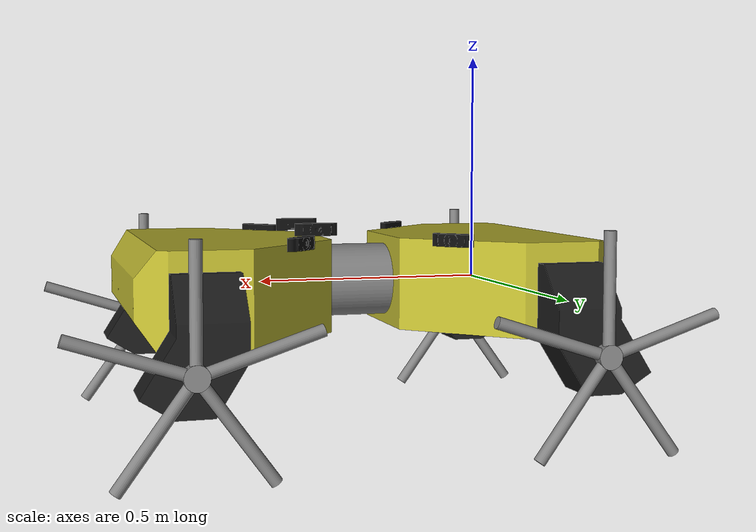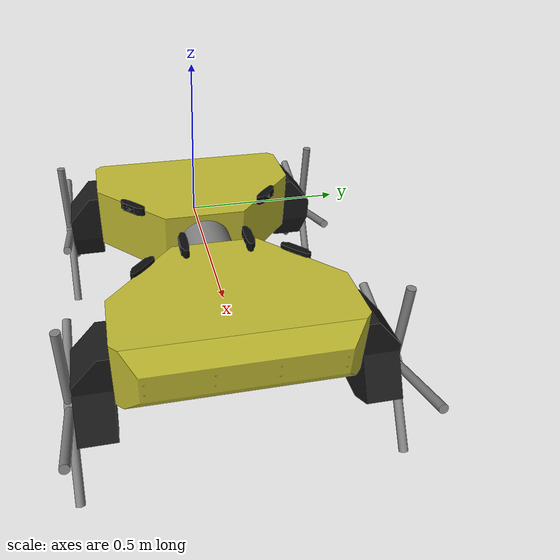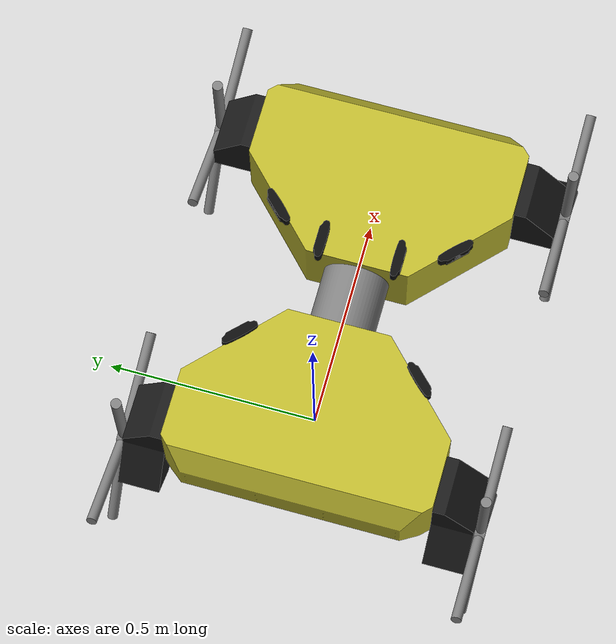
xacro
<?xml version="1.0"?>

<robot name="wanderer_II" xmlns:xacro="http://www.ros.org/wiki/xacro">

    <!-- Import sensor plugin -->
    <gazebo>
        <plugin filename="ignition-gazebo-sensors-system"
            name="gz::sim::systems::Sensors">
            <render_engine>ogre2</render_engine>
        </plugin>
    </gazebo>

    <!-- Models -->

    <link name="base_link">
        <origin rpy="0 0 0" xyz="0 0 0" />
    </link>

    <link name="back_chassis">
        <inertial>
            <origin
                xyz="0 0 0"
                rpy="0 0 0" />
            <mass
                value="96.7490415336591" />
            <inertia
                ixx="2.86555455664308"
                ixy="-0.00219519846779945"
                ixz="-0.000628989052193264"
                iyy="3.46674166060761"
                iyz="-0.000686654400421217"
                izz="1.23187799751044" />
        </inertial>
        <visual>
            <origin
                xyz="0 0 0"
                rpy="0 0 0" />
            <geometry>
                <mesh
                    filename="file://$(find simulation2024)/models/heimdall/Rear_Reference.STL" />
            </geometry>
            <material
                name="">
                <color
                    rgba="0.7411764705882353 0.7176470588235294 0.1843137254901961 1" />
            </material>
        </visual>
        <collision>
            <origin
                xyz="0 0 0"
                rpy="0 0 0" />
            <geometry>
                <mesh
                    filename="file://$(find simulation2024)/models/heimdall/Rear_Reference.STL" />
            </geometry>
        </collision>
    </link>

    <link name="hinge">
        <inertial>
            <origin
                xyz="0 0 0"
                rpy="0 0 0" />
            <mass
                value="96.7490415336591" />
            <inertia
                ixx="2.86555455664308"
                ixy="-0.00219519846779945"
                ixz="-0.000628989052193264"
                iyy="3.46674166060761"
                iyz="-0.000686654400421217"
                izz="1.23187799751044" />
        </inertial>
        <visual>
            <origin
                xyz="0 0 0"
                rpy="0 0 0" />
            <geometry>
                <mesh
                    filename="file://$(find simulation2024)/models/heimdall/Simplified_Hinge.STL" />
            </geometry>
            <material
                name="">
                <color
                    rgba="0.5 0.5 0.5 1" />
            </material>
        </visual>
        <collision>
            <origin
                xyz="0 0 0"
                rpy="0 0 0" />
            <geometry>
                <mesh
                    filename="file://$(find simulation2024)/models/heimdall/Simplified_Hinge.STL" />
            </geometry>
        </collision>
    </link>

    <link name="front_chassis">
        <inertial>
            <origin
                xyz="0 0 0"
                rpy="0 0 0" />
            <mass
                value="96.7490415336591" />
            <inertia
                ixx="2.86555455664308"
                ixy="-0.00219519846779945"
                ixz="-0.000628989052193264"
                iyy="3.46674166060761"
                iyz="-0.000686654400421217"
                izz="1.23187799751044" />
        </inertial>
        <visual>
            <origin
                xyz="0 0 0"
                rpy="0 0 3.14159265359" />
            <geometry>
                <mesh
                    filename="file://$(find simulation2024)/models/heimdall/Rear_Reference.STL" />
            </geometry>
            <material
                name="">
                <color
                    rgba="0.7411764705882353 0.7176470588235294 0.1843137254901961 1" />
            </material>
        </visual>
        <collision>
            <origin
                xyz="0 0 0"
                rpy="0 0 3.14159265359" />
            <geometry>
                <mesh
                    filename="file://$(find simulation2024)/models/heimdall/Rear_Reference.STL" />
            </geometry>
        </collision>
    </link>

    <link name="br_motor_pod">
        <inertial>
            <origin
                xyz="0 0 0"
                rpy="0 3.14159265359 3.14159265359" />
            <mass
                value="96.7490415336591" />
            <inertia
                ixx="2.86555455664308"
                ixy="-0.00219519846779945"
                ixz="-0.000628989052193264"
                iyy="3.46674166060761"
                iyz="-0.000686654400421217"
                izz="1.23187799751044" />
        </inertial>
        <visual>
            <origin
                xyz="0 0 0"
                rpy="0 3.14159265359 3.14159265359" />
            <geometry>
                <mesh
                    filename="file://$(find simulation2024)/models/heimdall/Motor_Pod_2.STL" />
            </geometry>
            <material
                name="">
                <color
                    rgba="0.1 0.1 0.1 1" />
            </material>
        </visual>
        <collision>
            <origin
                xyz="0 0 0"
                rpy="0 3.14159265359 3.14159265359" />
            <geometry>
                <mesh
                    filename="file://$(find simulation2024)/models/heimdall/Motor_Pod_2.STL" />
            </geometry>
        </collision>
    </link>

    <link name="bl_motor_pod">
        <inertial>
            <origin
                xyz="0 0 0"
                rpy="0 3.14159265359 3.14159265359" />
            <mass
                value="96.7490415336591" />
            <inertia
                ixx="2.86555455664308"
                ixy="-0.00219519846779945"
                ixz="-0.000628989052193264"
                iyy="3.46674166060761"
                iyz="-0.000686654400421217"
                izz="1.23187799751044" />
        </inertial>
        <visual>
            <origin
                xyz="0 0 0"
                rpy="0 3.14159265359 3.14159265359" />
            <geometry>
                <mesh
                    filename="file://$(find simulation2024)/models/heimdall/Motor_Pod_1.STL" />
            </geometry>
            <material
                name="">
                <color
                    rgba="0.1 0.1 0.1 1" />
            </material>
        </visual>
        <collision>
            <origin
                xyz="0 0 0"
                rpy="0 3.14159265359 3.14159265359" />
            <geometry>
                <mesh
                    filename="file://$(find simulation2024)/models/heimdall/Motor_Pod_1.STL" />
            </geometry>
        </collision>
    </link>

    <link name="fr_motor_pod">
        <inertial>
            <origin
                xyz="0 0 0"
                rpy="0 3.14159265359 0" />
            <mass
                value="96.7490415336591" />
            <inertia
                ixx="2.86555455664308"
                ixy="-0.00219519846779945"
                ixz="-0.000628989052193264"
                iyy="3.46674166060761"
                iyz="-0.000686654400421217"
                izz="1.23187799751044" />
        </inertial>
        <visual>
            <origin
                xyz="0 0 0"
                rpy="0 3.14159265359 0" />
            <geometry>
                <mesh
                    filename="file://$(find simulation2024)/models/heimdall/Motor_Pod_1.STL" />
            </geometry>
            <material
                name="">
                <color
                    rgba="0.1 0.1 0.1 1" />
            </material>
        </visual>
        <collision>
            <origin
                xyz="0 0 0"
                rpy="0 3.14159265359 0" />
            <geometry>
                <mesh
                    filename="file://$(find simulation2024)/models/heimdall/Motor_Pod_1.STL" />
            </geometry>
        </collision>
    </link>

    <link name="fl_motor_pod">
        <inertial>
            <origin
                xyz="0 0 0"
                rpy="0 3.14159265359 0" />
            <mass
                value="96.7490415336591" />
            <inertia
                ixx="2.86555455664308"
                ixy="-0.00219519846779945"
                ixz="-0.000628989052193264"
                iyy="3.46674166060761"
                iyz="-0.000686654400421217"
                izz="1.23187799751044" />
        </inertial>
        <visual>
            <origin
                xyz="0 0 0"
                rpy="0 3.14159265359 0" />
            <geometry>
                <mesh
                    filename="file://$(find simulation2024)/models/heimdall/Motor_Pod_2.STL" />
            </geometry>
            <material
                name="">
                <color
                    rgba="0.1 0.1 0.1 1" />
            </material>
        </visual>
        <collision>
            <origin
                xyz="0 0 0"
                rpy="0 3.14159265359 0" />
            <geometry>
                <mesh
                    filename="file://$(find simulation2024)/models/heimdall/Motor_Pod_2.STL" />
            </geometry>
        </collision>
    </link>

    <!-- Left Front Wheg -->

    <link name="left_front_wheg">
        <inertial>
            <origin
                xyz="0 0 0"
                rpy="0 0 0" />
            <mass
                value="96.7490415336591" />
            <inertia
                ixx="2.86555455664308"
                ixy="-0.00219519846779945"
                ixz="-0.000628989052193264"
                iyy="3.46674166060761"
                iyz="-0.000686654400421217"
                izz="1.23187799751044" />
        </inertial>
        <visual>
            <origin
                xyz="0 0 0"
                rpy="0 0 0" />
            <geometry>
                <cylinder radius="0.0254" length="0.0254" />
            </geometry>
            <material
                name="">
                <color
                    rgba="0.5 0.5 0.5 1" />
            </material>
        </visual>
        <collision>
            <origin
                xyz="0 0 0"
                rpy="0 0 0" />
            <geometry>
                <cylinder radius="0.254" length="0.0254" />
            </geometry>
        </collision>
    </link>

    <link name="lf1">
        <inertial>
            <origin
                xyz="0 0 -0.127"
                rpy="0 0 0" />
            <mass
                value="96.7490415336591" />
            <inertia
                ixx="2.86555455664308"
                ixy="-0.00219519846779945"
                ixz="-0.000628989052193264"
                iyy="3.46674166060761"
                iyz="-0.000686654400421217"
                izz="1.23187799751044" />
        </inertial>
        <visual>
            <origin
                xyz="0 0 -0.127"
                rpy="0 0 0" />
            <geometry>
                <cylinder radius="0.0127" length="0.254" />
            </geometry>
            <material
                name="">
                <color
                    rgba="0.5 0.5 0.5 1" />
            </material>
        </visual>
        <collision>
            <origin
                xyz="0 0 -0.127"
                rpy="0 0 0" />
            <geometry>
                <cylinder radius="0.254" length="0.0254" />
            </geometry>
        </collision>
    </link>

    <link name="lf2">
        <inertial>
            <origin
                xyz="0 0 -0.127"
                rpy="0 0 0" />
            <mass
                value="96.7490415336591" />
            <inertia
                ixx="2.86555455664308"
                ixy="-0.00219519846779945"
                ixz="-0.000628989052193264"
                iyy="3.46674166060761"
                iyz="-0.000686654400421217"
                izz="1.23187799751044" />
        </inertial>
        <visual>
            <origin
                xyz="0 0 -0.127"
                rpy="0 0 0" />
            <geometry>
                <cylinder radius="0.0127" length="0.254" />
            </geometry>
            <material
                name="">
                <color
                    rgba="0.5 0.5 0.5 1" />
            </material>
        </visual>
        <collision>
            <origin
                xyz="0 0 -0.127"
                rpy="0 0 0" />
            <geometry>
                <cylinder radius="0.254" length="0.0254" />
            </geometry>
        </collision>
    </link>

    <link name="lf3">
        <inertial>
            <origin
                xyz="0 0 -0.127"
                rpy="0 0 0" />
            <mass
                value="96.7490415336591" />
            <inertia
                ixx="2.86555455664308"
                ixy="-0.00219519846779945"
                ixz="-0.000628989052193264"
                iyy="3.46674166060761"
                iyz="-0.000686654400421217"
                izz="1.23187799751044" />
        </inertial>
        <visual>
            <origin
                xyz="0 0 -0.127"
                rpy="0 0 0" />
            <geometry>
                <cylinder radius="0.0127" length="0.254" />
            </geometry>
            <material
                name="">
                <color
                    rgba="0.5 0.5 0.5 1" />
            </material>
        </visual>
        <collision>
            <origin
                xyz="0 0 -0.127"
                rpy="0 0 0" />
            <geometry>
                <cylinder radius="0.254" length="0.0254" />
            </geometry>
        </collision>
    </link>

    <link name="lf4">
        <inertial>
            <origin
                xyz="0 0 -0.127"
                rpy="0 0 0" />
            <mass
                value="96.7490415336591" />
            <inertia
                ixx="2.86555455664308"
                ixy="-0.00219519846779945"
                ixz="-0.000628989052193264"
                iyy="3.46674166060761"
                iyz="-0.000686654400421217"
                izz="1.23187799751044" />
        </inertial>
        <visual>
            <origin
                xyz="0 0 -0.127"
                rpy="0 0 0" />
            <geometry>
                <cylinder radius="0.0127" length="0.254" />
            </geometry>
            <material
                name="">
                <color
                    rgba="0.5 0.5 0.5 1" />
            </material>
        </visual>
        <collision>
            <origin
                xyz="0 0 -0.127"
                rpy="0 0 0" />
            <geometry>
                <cylinder radius="0.254" length="0.0254" />
            </geometry>
        </collision>
    </link>

    <link name="lf5">
        <inertial>
            <origin
                xyz="0 0 -0.127"
                rpy="0 0 0" />
            <mass
                value="96.7490415336591" />
            <inertia
                ixx="2.86555455664308"
                ixy="-0.00219519846779945"
                ixz="-0.000628989052193264"
                iyy="3.46674166060761"
                iyz="-0.000686654400421217"
                izz="1.23187799751044" />
        </inertial>
        <visual>
            <origin
                xyz="0 0 -0.127"
                rpy="0 0 0" />
            <geometry>
                <cylinder radius="0.0127" length="0.254" />
            </geometry>
            <material
                name="">
                <color
                    rgba="0.5 0.5 0.5 1" />
            </material>
        </visual>
        <collision>
            <origin
                xyz="0 0 -0.127"
                rpy="0 0 0" />
            <geometry>
                <cylinder radius="0.254" length="0.0254" />
            </geometry>
        </collision>
    </link>

    <!-- Right Front Wheg -->

    <link name="right_front_wheg">
        <inertial>
            <origin
                xyz="0 0 0"
                rpy="0 0 0" />
            <mass
                value="96.7490415336591" />
            <inertia
                ixx="2.86555455664308"
                ixy="-0.00219519846779945"
                ixz="-0.000628989052193264"
                iyy="3.46674166060761"
                iyz="-0.000686654400421217"
                izz="1.23187799751044" />
        </inertial>
        <visual>
            <origin
                xyz="0 0 0"
                rpy="0 0 0" />
            <geometry>
                <cylinder radius="0.0254" length="0.0254" />
            </geometry>
            <material
                name="">
                <color
                    rgba="0.5 0.5 0.5 1" />
            </material>
        </visual>
        <collision>
            <origin
                xyz="0 0 0"
                rpy="0 0 0" />
            <geometry>
                <cylinder radius="0.254" length="0.0254" />
            </geometry>
        </collision>
    </link>

    <link name="rf1">
        <inertial>
            <origin
                xyz="0 0 -0.127"
                rpy="0 0 0" />
            <mass
                value="96.7490415336591" />
            <inertia
                ixx="2.86555455664308"
                ixy="-0.00219519846779945"
                ixz="-0.000628989052193264"
                iyy="3.46674166060761"
                iyz="-0.000686654400421217"
                izz="1.23187799751044" />
        </inertial>
        <visual>
            <origin
                xyz="0 0 -0.127"
                rpy="0 0 0" />
            <geometry>
                <cylinder radius="0.0127" length="0.254" />
            </geometry>
            <material
                name="">
                <color
                    rgba="0.5 0.5 0.5 1" />
            </material>
        </visual>
        <collision>
            <origin
                xyz="0 0 -0.127"
                rpy="0 0 0" />
            <geometry>
                <cylinder radius="0.254" length="0.0254" />
            </geometry>
        </collision>
    </link>

    <link name="rf2">
        <inertial>
            <origin
                xyz="0 0 -0.127"
                rpy="0 0 0" />
            <mass
                value="96.7490415336591" />
            <inertia
                ixx="2.86555455664308"
                ixy="-0.00219519846779945"
                ixz="-0.000628989052193264"
                iyy="3.46674166060761"
                iyz="-0.000686654400421217"
                izz="1.23187799751044" />
        </inertial>
        <visual>
            <origin
                xyz="0 0 -0.127"
                rpy="0 0 0" />
            <geometry>
                <cylinder radius="0.0127" length="0.254" />
            </geometry>
            <material
                name="">
                <color
                    rgba="0.5 0.5 0.5 1" />
            </material>
        </visual>
        <collision>
            <origin
                xyz="0 0 -0.127"
                rpy="0 0 0" />
            <geometry>
                <cylinder radius="0.254" length="0.0254" />
            </geometry>
        </collision>
    </link>

    <link name="rf3">
        <inertial>
            <origin
                xyz="0 0 -0.127"
                rpy="0 0 0" />
            <mass
                value="96.7490415336591" />
            <inertia
                ixx="2.86555455664308"
                ixy="-0.00219519846779945"
                ixz="-0.000628989052193264"
                iyy="3.46674166060761"
                iyz="-0.000686654400421217"
                izz="1.23187799751044" />
        </inertial>
        <visual>
            <origin
                xyz="0 0 -0.127"
                rpy="0 0 0" />
            <geometry>
                <cylinder radius="0.0127" length="0.254" />
            </geometry>
            <material
                name="">
                <color
                    rgba="0.5 0.5 0.5 1" />
            </material>
        </visual>
        <collision>
            <origin
                xyz="0 0 -0.127"
                rpy="0 0 0" />
            <geometry>
                <cylinder radius="0.254" length="0.0254" />
            </geometry>
        </collision>
    </link>

    <link name="rf4">
        <inertial>
            <origin
                xyz="0 0 -0.127"
                rpy="0 0 0" />
            <mass
                value="96.7490415336591" />
            <inertia
                ixx="2.86555455664308"
                ixy="-0.00219519846779945"
                ixz="-0.000628989052193264"
                iyy="3.46674166060761"
                iyz="-0.000686654400421217"
                izz="1.23187799751044" />
        </inertial>
        <visual>
            <origin
                xyz="0 0 -0.127"
                rpy="0 0 0" />
            <geometry>
                <cylinder radius="0.0127" length="0.254" />
            </geometry>
            <material
                name="">
                <color
                    rgba="0.5 0.5 0.5 1" />
            </material>
        </visual>
        <collision>
            <origin
                xyz="0 0 -0.127"
                rpy="0 0 0" />
            <geometry>
                <cylinder radius="0.254" length="0.0254" />
            </geometry>
        </collision>
    </link>

    <link name="rf5">
        <inertial>
            <origin
                xyz="0 0 -0.127"
                rpy="0 0 0" />
            <mass
                value="96.7490415336591" />
            <inertia
                ixx="2.86555455664308"
                ixy="-0.00219519846779945"
                ixz="-0.000628989052193264"
                iyy="3.46674166060761"
                iyz="-0.000686654400421217"
                izz="1.23187799751044" />
        </inertial>
        <visual>
            <origin
                xyz="0 0 -0.127"
                rpy="0 0 0" />
            <geometry>
                <cylinder radius="0.0127" length="0.254" />
            </geometry>
            <material
                name="">
                <color
                    rgba="0.5 0.5 0.5 1" />
            </material>
        </visual>
        <collision>
            <origin
                xyz="0 0 -0.127"
                rpy="0 0 0" />
            <geometry>
                <cylinder radius="0.254" length="0.0254" />
            </geometry>
        </collision>
    </link>

    <!-- Left Back Wheg -->

    <link name="left_back_wheg">
        <inertial>
            <origin
                xyz="0 0 0"
                rpy="0 0 0" />
            <mass
                value="96.7490415336591" />
            <inertia
                ixx="2.86555455664308"
                ixy="-0.00219519846779945"
                ixz="-0.000628989052193264"
                iyy="3.46674166060761"
                iyz="-0.000686654400421217"
                izz="1.23187799751044" />
        </inertial>
        <visual>
            <origin
                xyz="0 0 0"
                rpy="0 0 0" />
            <geometry>
                <cylinder radius="0.0254" length="0.0254" />
            </geometry>
            <material
                name="">
                <color
                    rgba="0.5 0.5 0.5 1" />
            </material>
        </visual>
        <collision>
            <origin
                xyz="0 0 0"
                rpy="0 0 0" />
            <geometry>
                <cylinder radius="0.254" length="0.0254" />
            </geometry>
        </collision>
    </link>

    <link name="lb1">
        <inertial>
            <origin
                xyz="0 0 -0.127"
                rpy="0 0 0" />
            <mass
                value="96.7490415336591" />
            <inertia
                ixx="2.86555455664308"
                ixy="-0.00219519846779945"
                ixz="-0.000628989052193264"
                iyy="3.46674166060761"
                iyz="-0.000686654400421217"
                izz="1.23187799751044" />
        </inertial>
        <visual>
            <origin
                xyz="0 0 -0.127"
                rpy="0 0 0" />
            <geometry>
                <cylinder radius="0.0127" length="0.254" />
            </geometry>
            <material
                name="">
                <color
                    rgba="0.5 0.5 0.5 1" />
            </material>
        </visual>
        <collision>
            <origin
                xyz="0 0 -0.127"
                rpy="0 0 0" />
            <geometry>
                <cylinder radius="0.254" length="0.0254" />
            </geometry>
        </collision>
    </link>

    <link name="lb2">
        <inertial>
            <origin
                xyz="0 0 -0.127"
                rpy="0 0 0" />
            <mass
                value="96.7490415336591" />
            <inertia
                ixx="2.86555455664308"
                ixy="-0.00219519846779945"
                ixz="-0.000628989052193264"
                iyy="3.46674166060761"
                iyz="-0.000686654400421217"
                izz="1.23187799751044" />
        </inertial>
        <visual>
            <origin
                xyz="0 0 -0.127"
                rpy="0 0 0" />
            <geometry>
                <cylinder radius="0.0127" length="0.254" />
            </geometry>
            <material
                name="">
                <color
                    rgba="0.5 0.5 0.5 1" />
            </material>
        </visual>
        <collision>
            <origin
                xyz="0 0 -0.127"
                rpy="0 0 0" />
            <geometry>
                <cylinder radius="0.254" length="0.0254" />
            </geometry>
        </collision>
    </link>

    <link name="lb3">
        <inertial>
            <origin
                xyz="0 0 -0.127"
                rpy="0 0 0" />
            <mass
                value="96.7490415336591" />
            <inertia
                ixx="2.86555455664308"
                ixy="-0.00219519846779945"
                ixz="-0.000628989052193264"
                iyy="3.46674166060761"
                iyz="-0.000686654400421217"
                izz="1.23187799751044" />
        </inertial>
        <visual>
            <origin
                xyz="0 0 -0.127"
                rpy="0 0 0" />
            <geometry>
                <cylinder radius="0.0127" length="0.254" />
            </geometry>
            <material
                name="">
                <color
                    rgba="0.5 0.5 0.5 1" />
            </material>
        </visual>
        <collision>
            <origin
                xyz="0 0 -0.127"
                rpy="0 0 0" />
            <geometry>
                <cylinder radius="0.254" length="0.0254" />
            </geometry>
        </collision>
    </link>

    <link name="lb4">
        <inertial>
            <origin
                xyz="0 0 -0.127"
                rpy="0 0 0" />
            <mass
                value="96.7490415336591" />
            <inertia
                ixx="2.86555455664308"
                ixy="-0.00219519846779945"
                ixz="-0.000628989052193264"
                iyy="3.46674166060761"
                iyz="-0.000686654400421217"
                izz="1.23187799751044" />
        </inertial>
        <visual>
            <origin
                xyz="0 0 -0.127"
                rpy="0 0 0" />
            <geometry>
                <cylinder radius="0.0127" length="0.254" />
            </geometry>
            <material
                name="">
                <color
                    rgba="0.5 0.5 0.5 1" />
            </material>
        </visual>
        <collision>
            <origin
                xyz="0 0 -0.127"
                rpy="0 0 0" />
            <geometry>
                <cylinder radius="0.254" length="0.0254" />
            </geometry>
        </collision>
    </link>

    <link name="lb5">
        <inertial>
            <origin
                xyz="0 0 -0.127"
                rpy="0 0 0" />
            <mass
                value="96.7490415336591" />
            <inertia
                ixx="2.86555455664308"
                ixy="-0.00219519846779945"
                ixz="-0.000628989052193264"
                iyy="3.46674166060761"
                iyz="-0.000686654400421217"
                izz="1.23187799751044" />
        </inertial>
        <visual>
            <origin
                xyz="0 0 -0.127"
                rpy="0 0 0" />
            <geometry>
                <cylinder radius="0.0127" length="0.254" />
            </geometry>
            <material
                name="">
                <color
                    rgba="0.5 0.5 0.5 1" />
            </material>
        </visual>
        <collision>
            <origin
                xyz="0 0 -0.127"
                rpy="0 0 0" />
            <geometry>
                <cylinder radius="0.254" length="0.0254" />
            </geometry>
        </collision>
    </link>

    <!-- Right Back Wheg -->

    <link name="right_back_wheg">
        <inertial>
            <origin
                xyz="0 0 0"
                rpy="0 0 0" />
            <mass
                value="96.7490415336591" />
            <inertia
                ixx="2.86555455664308"
                ixy="-0.00219519846779945"
                ixz="-0.000628989052193264"
                iyy="3.46674166060761"
                iyz="-0.000686654400421217"
                izz="1.23187799751044" />
        </inertial>
        <visual>
            <origin
                xyz="0 0 0"
                rpy="0 0 0" />
            <geometry>
                <cylinder radius="0.0254" length="0.0254" />
            </geometry>
            <material
                name="">
                <color
                    rgba="0.5 0.5 0.5 1" />
            </material>
        </visual>
        <collision>
            <origin
                xyz="0 0 0"
                rpy="0 0 0" />
            <geometry>
                <cylinder radius="0.254" length="0.0254" />
            </geometry>
        </collision>
    </link>

    <link name="rb1">
        <inertial>
            <origin
                xyz="0 0 -0.127"
                rpy="0 0 0" />
            <mass
                value="96.7490415336591" />
            <inertia
                ixx="2.86555455664308"
                ixy="-0.00219519846779945"
                ixz="-0.000628989052193264"
                iyy="3.46674166060761"
                iyz="-0.000686654400421217"
                izz="1.23187799751044" />
        </inertial>
        <visual>
            <origin
                xyz="0 0 -0.127"
                rpy="0 0 0" />
            <geometry>
                <cylinder radius="0.0127" length="0.254" />
            </geometry>
            <material
                name="">
                <color
                    rgba="0.5 0.5 0.5 1" />
            </material>
        </visual>
        <collision>
            <origin
                xyz="0 0 -0.127"
                rpy="0 0 0" />
            <geometry>
                <cylinder radius="0.254" length="0.0254" />
            </geometry>
        </collision>
    </link>

    <link name="rb2">
        <inertial>
            <origin
                xyz="0 0 -0.127"
                rpy="0 0 0" />
            <mass
                value="96.7490415336591" />
            <inertia
                ixx="2.86555455664308"
                ixy="-0.00219519846779945"
                ixz="-0.000628989052193264"
                iyy="3.46674166060761"
                iyz="-0.000686654400421217"
                izz="1.23187799751044" />
        </inertial>
        <visual>
            <origin
                xyz="0 0 -0.127"
                rpy="0 0 0" />
            <geometry>
                <cylinder radius="0.0127" length="0.254" />
            </geometry>
            <material
                name="">
                <color
                    rgba="0.5 0.5 0.5 1" />
            </material>
        </visual>
        <collision>
            <origin
                xyz="0 0 -0.127"
                rpy="0 0 0" />
            <geometry>
                <cylinder radius="0.254" length="0.0254" />
            </geometry>
        </collision>
    </link>

    <link name="rb3">
        <inertial>
            <origin
                xyz="0 0 -0.127"
                rpy="0 0 0" />
            <mass
                value="96.7490415336591" />
            <inertia
                ixx="2.86555455664308"
                ixy="-0.00219519846779945"
                ixz="-0.000628989052193264"
                iyy="3.46674166060761"
                iyz="-0.000686654400421217"
                izz="1.23187799751044" />
        </inertial>
        <visual>
            <origin
                xyz="0 0 -0.127"
                rpy="0 0 0" />
            <geometry>
                <cylinder radius="0.0127" length="0.254" />
            </geometry>
            <material
                name="">
                <color
                    rgba="0.5 0.5 0.5 1" />
            </material>
        </visual>
        <collision>
            <origin
                xyz="0 0 -0.127"
                rpy="0 0 0" />
            <geometry>
                <cylinder radius="0.254" length="0.0254" />
            </geometry>
        </collision>
    </link>

    <link name="rb4">
        <inertial>
            <origin
                xyz="0 0 -0.127"
                rpy="0 0 0" />
            <mass
                value="96.7490415336591" />
            <inertia
                ixx="2.86555455664308"
                ixy="-0.00219519846779945"
                ixz="-0.000628989052193264"
                iyy="3.46674166060761"
                iyz="-0.000686654400421217"
                izz="1.23187799751044" />
        </inertial>
        <visual>
            <origin
                xyz="0 0 -0.127"
                rpy="0 0 0" />
            <geometry>
                <cylinder radius="0.0127" length="0.254" />
            </geometry>
            <material
                name="">
                <color
                    rgba="0.5 0.5 0.5 1" />
            </material>
        </visual>
        <collision>
            <origin
                xyz="0 0 -0.127"
                rpy="0 0 0" />
            <geometry>
                <cylinder radius="0.254" length="0.0254" />
            </geometry>
        </collision>
    </link>

    <link name="rb5">
        <inertial>
            <origin
                xyz="0 0 -0.127"
                rpy="0 0 0" />
            <mass
                value="96.7490415336591" />
            <inertia
                ixx="2.86555455664308"
                ixy="-0.00219519846779945"
                ixz="-0.000628989052193264"
                iyy="3.46674166060761"
                iyz="-0.000686654400421217"
                izz="1.23187799751044" />
        </inertial>
        <visual>
            <origin
                xyz="0 0 -0.127"
                rpy="0 0 0" />
            <geometry>
                <cylinder radius="0.0127" length="0.254" />
            </geometry>
            <material
                name="">
                <color
                    rgba="0.5 0.5 0.5 1" />
            </material>
        </visual>
        <collision>
            <origin
                xyz="0 0 -0.127"
                rpy="0 0 0" />
            <geometry>
                <cylinder radius="0.254" length="0.0254" />
            </geometry>
        </collision>
    </link>

    <!-- Cameras -->
    <link name="bir_camera">
        <inertial>
            <origin
                xyz="-1.06281777656481E-07 0.000966339550162953 -0.00671854201515454"
                rpy="0 0 0" />
            <mass
                value="0.0470288707068895" />
            <inertia
                ixx="4.39178954043001E-06"
                ixy="-2.6587461829647E-12"
                ixz="3.09228404230734E-11"
                iyy="3.29793928552999E-05"
                iyz="8.44203479212317E-08"
                izz="3.37748134686877E-05" />
        </inertial>
        <visual>
            <origin
                xyz="0 0 0"
                rpy="0 0 0" />
            <geometry>
                <mesh
                    filename="file://$(find simulation2024)/models/heimdall/Camera.STL" />
            </geometry>
            <material
                name="">
                <color
                    rgba="0.05 0.05 0.05 1" />
            </material>
        </visual>
        <collision>
            <origin
                xyz="0 0 0"
                rpy="0 0 0" />
            <geometry>
                <mesh
                    filename="file://$(find simulation2024)/models/heimdall/Camera.STL" />
            </geometry>
        </collision>
    </link>

    <link name="bil_camera">
        <inertial>
            <origin
                xyz="-1.06281777656481E-07 0.000966339550162953 -0.00671854201515454"
                rpy="0 0 0" />
            <mass
                value="0.0470288707068895" />
            <inertia
                ixx="4.39178954043001E-06"
                ixy="-2.6587461829647E-12"
                ixz="3.09228404230734E-11"
                iyy="3.29793928552999E-05"
                iyz="8.44203479212317E-08"
                izz="3.37748134686877E-05" />
        </inertial>
        <visual>
            <origin
                xyz="0 0 0"
                rpy="0 0 0" />
            <geometry>
                <mesh
                    filename="file://$(find simulation2024)/models/heimdall/Camera.STL" />
            </geometry>
            <material
                name="">
                <color
                    rgba="0.05 0.05 0.05 1" />
            </material>
        </visual>
        <collision>
            <origin
                xyz="0 0 0"
                rpy="0 0 0" />
            <geometry>
                <mesh
                    filename="file://$(find simulation2024)/models/heimdall/Camera.STL" />
            </geometry>
        </collision>
    </link>

    <link name="fir_camera">
        <inertial>
            <origin
                xyz="-1.06281777656481E-07 0.000966339550162953 -0.00671854201515454"
                rpy="0 0 0" />
            <mass
                value="0.0470288707068895" />
            <inertia
                ixx="4.39178954043001E-06"
                ixy="-2.6587461829647E-12"
                ixz="3.09228404230734E-11"
                iyy="3.29793928552999E-05"
                iyz="8.44203479212317E-08"
                izz="3.37748134686877E-05" />
        </inertial>
        <visual>
            <origin
                xyz="0 0 0"
                rpy="0 0 0" />
            <geometry>
                <mesh
                    filename="file://$(find simulation2024)/models/heimdall/Camera.STL" />
            </geometry>
            <material
                name="">
                <color
                    rgba="0.05 0.05 0.05 1" />
            </material>
        </visual>
        <collision>
            <origin
                xyz="0 0 0"
                rpy="0 0 0" />
            <geometry>
                <mesh
                    filename="file://$(find simulation2024)/models/heimdall/Camera.STL" />
            </geometry>
        </collision>
    </link>

    <link name="fil_camera">
        <inertial>
            <origin
                xyz="-1.06281777656481E-07 0.000966339550162953 -0.00671854201515454"
                rpy="0 0 0" />
            <mass
                value="0.0470288707068895" />
            <inertia
                ixx="4.39178954043001E-06"
                ixy="-2.6587461829647E-12"
                ixz="3.09228404230734E-11"
                iyy="3.29793928552999E-05"
                iyz="8.44203479212317E-08"
                izz="3.37748134686877E-05" />
        </inertial>
        <visual>
            <origin
                xyz="0 0 0"
                rpy="0 0 0" />
            <geometry>
                <mesh
                    filename="file://$(find simulation2024)/models/heimdall/Camera.STL" />
            </geometry>
            <material
                name="">
                <color
                    rgba="0.05 0.05 0.05 1" />
            </material>
        </visual>
        <collision>
            <origin
                xyz="0 0 0"
                rpy="0 0 0" />
            <geometry>
                <mesh
                    filename="file://$(find simulation2024)/models/heimdall/Camera.STL" />
            </geometry>
        </collision>
    </link>

    <link name="frontr_camera">
        <inertial>
            <origin
                xyz="-1.06281777656481E-07 0.000966339550162953 -0.00671854201515454"
                rpy="0 0 0" />
            <mass
                value="0.0470288707068895" />
            <inertia
                ixx="4.39178954043001E-06"
                ixy="-2.6587461829647E-12"
                ixz="3.09228404230734E-11"
                iyy="3.29793928552999E-05"
                iyz="8.44203479212317E-08"
                izz="3.37748134686877E-05" />
        </inertial>
        <visual>
            <origin
                xyz="0 0 0"
                rpy="0 0 0" />
            <geometry>
                <mesh
                    filename="file://$(find simulation2024)/models/heimdall/Camera.STL" />
            </geometry>
            <material
                name="">
                <color
                    rgba="0.05 0.05 0.05 1" />
            </material>
        </visual>
        <collision>
            <origin
                xyz="0 0 0"
                rpy="0 0 0" />
            <geometry>
                <mesh
                    filename="file://$(find simulation2024)/models/heimdall/Camera.STL" />
            </geometry>
        </collision>
    </link>

    <link name="frontl_camera">
        <inertial>
            <origin
                xyz="-1.06281777656481E-07 0.000966339550162953 -0.00671854201515454"
                rpy="0 0 0" />
            <mass
                value="0.0470288707068895" />
            <inertia
                ixx="4.39178954043001E-06"
                ixy="-2.6587461829647E-12"
                ixz="3.09228404230734E-11"
                iyy="3.29793928552999E-05"
                iyz="8.44203479212317E-08"
                izz="3.37748134686877E-05" />
        </inertial>
        <visual>
            <origin
                xyz="0 0 0"
                rpy="0 0 0" />
            <geometry>
                <mesh
                    filename="file://$(find simulation2024)/models/heimdall/Camera.STL" />
            </geometry>
            <material
                name="">
                <color
                    rgba="0.05 0.05 0.05 1" />
            </material>
        </visual>
        <collision>
            <origin
                xyz="0 0 0"
                rpy="0 0 0" />
            <geometry>
                <mesh
                    filename="file://$(find simulation2024)/models/heimdall/Camera.STL" />
            </geometry>
        </collision>
    </link>
    <!-- Joints -->

    <joint name="base_back" type="fixed">
        <origin xyz="0.0 0.0 0.0" rpy="0.0 0.0 0.0" />
        <parent link="base_link" />
        <child link="back_chassis" />
        <axis xyz="0.0 0.0 1.0" />
    </joint>

    <joint name="back_hinge" type="continuous">
        <origin xyz="0.2931185 0.0 0.0" rpy="0.0 1.57079632679 0.0" />
        <parent link="back_chassis" />
        <child link="hinge" />
        <axis xyz="0.0 0.0 1.0" />
    </joint>

    <joint name="hinge_front" type="continuous">
        <origin xyz="0.0 0.0 0.2931185" rpy="0 -1.57079632679 0.0" />
        <parent link="hinge" />
        <child link="front_chassis" />
        <axis xyz="1.0 0.0 0.0" />
    </joint>

    <joint name="back_rpod" type="fixed">
        <origin xyz="-0.122 -0.3763 -0.07341" rpy="0.0 0.0 0.0" />
        <parent link="back_chassis" />
        <child link="br_motor_pod" />
        <axis xyz="0.0 0.0 1.0" />
    </joint>

    <joint name="back_lpod" type="fixed">
        <origin xyz="-0.122 0.3763 -0.07341" rpy="0.0 0.0 0.0" />
        <parent link="back_chassis" />
        <child link="bl_motor_pod" />
        <axis xyz="0.0 0.0 1.0" />
    </joint>

    <joint name="front_rpod" type="fixed">
        <origin xyz="0.122 -0.3763 -0.07341" rpy="0.0 0.0 0.0" />
        <parent link="front_chassis" />
        <child link="fr_motor_pod" />
        <axis xyz="0.0 0.0 1.0" />
    </joint>

    <joint name="front_lpod" type="fixed">
        <origin xyz="0.122 0.3763 -0.07341" rpy="0.0 0.0 0.0" />
        <parent link="front_chassis" />
        <child link="fl_motor_pod" />
        <axis xyz="0.0 0.0 1.0" />
    </joint>

    <!-- Left Front Wheg Joints -->

    <joint name="left_front_wheg_joint" type="continuous">
        <origin xyz="0 0.064 -0.05" rpy="1.57079632679 0.0 0.0" />
        <parent link="fl_motor_pod" />
        <child link="left_front_wheg" />
        <axis xyz="0.0 0.0 1.0" />
    </joint>

    <joint name="lf1_joint" type="fixed">
        <origin xyz="0 0 0" rpy="1.57079632679 0.0 0.0" />
        <parent link="left_front_wheg" />
        <child link="lf1" />
        <axis xyz="0.0 0.0 1.0" />
    </joint>

    <joint name="lf2_joint" type="fixed">
        <origin xyz="0 0 0" rpy="1.57079632679 0.0 1.25663706144" />
        <parent link="left_front_wheg" />
        <child link="lf2" />
        <axis xyz="0.0 0.0 1.0" />
    </joint>

    <joint name="lf3_joint" type="fixed">
        <origin xyz="0 0 0" rpy="1.57079632679 0.0 2.51327412287" />
        <parent link="left_front_wheg" />
        <child link="lf3" />
        <axis xyz="0.0 0.0 1.0" />
    </joint>

    <joint name="lf4_joint" type="fixed">
        <origin xyz="0 0 0" rpy="1.57079632679 0.0 3.76991118431" />
        <parent link="left_front_wheg" />
        <child link="lf4" />
        <axis xyz="0.0 0.0 1.0" />
    </joint>

    <joint name="lf5_joint" type="fixed">
        <origin xyz="0 0 0" rpy="1.57079632679 0.0 5.02654824574" />
        <parent link="left_front_wheg" />
        <child link="lf5" />
        <axis xyz="0.0 0.0 1.0" />
    </joint>

    <!-- Right Front Wheg Joints -->

    <joint name="right_front_wheg_joint" type="continuous">
        <origin xyz="0 -0.064 -0.05" rpy="1.57079632679 0.0 0.0" />
        <parent link="fr_motor_pod" />
        <child link="right_front_wheg" />
        <axis xyz="0.0 0.0 1.0" />
    </joint>

    <joint name="rf1_joint" type="fixed">
        <origin xyz="0 0 0" rpy="1.57079632679 0.0 0.0" />
        <parent link="right_front_wheg" />
        <child link="rf1" />
        <axis xyz="0.0 0.0 1.0" />
    </joint>

    <joint name="rf2_joint" type="fixed">
        <origin xyz="0 0 0" rpy="1.57079632679 0.0 1.25663706144" />
        <parent link="right_front_wheg" />
        <child link="rf2" />
        <axis xyz="0.0 0.0 1.0" />
    </joint>

    <joint name="rf3_joint" type="fixed">
        <origin xyz="0 0 0" rpy="1.57079632679 0.0 2.51327412287" />
        <parent link="right_front_wheg" />
        <child link="rf3" />
        <axis xyz="0.0 0.0 1.0" />
    </joint>

    <joint name="rf4_joint" type="fixed">
        <origin xyz="0 0 0" rpy="1.57079632679 0.0 3.76991118431" />
        <parent link="right_front_wheg" />
        <child link="rf4" />
        <axis xyz="0.0 0.0 1.0" />
    </joint>

    <joint name="rf5_joint" type="fixed">
        <origin xyz="0 0 0" rpy="1.57079632679 0.0 5.02654824574" />
        <parent link="right_front_wheg" />
        <child link="rf5" />
        <axis xyz="0.0 0.0 1.0" />
    </joint>

    <!-- Left Back Wheg Joints -->

    <joint name="left_back_wheg_joint" type="continuous">
        <origin xyz="0 0.064 -0.05" rpy="1.57079632679 0.0 0.0" />
        <parent link="bl_motor_pod" />
        <child link="left_back_wheg" />
        <axis xyz="0.0 0.0 1.0" />
    </joint>

    <joint name="lb1_joint" type="fixed">
        <origin xyz="0 0 0" rpy="1.57079632679 0.0 0.0" />
        <parent link="left_back_wheg" />
        <child link="lb1" />
        <axis xyz="0.0 0.0 1.0" />
    </joint>

    <joint name="lb2_joint" type="fixed">
        <origin xyz="0 0 0" rpy="1.57079632679 0.0 1.25663706144" />
        <parent link="left_back_wheg" />
        <child link="lb2" />
        <axis xyz="0.0 0.0 1.0" />
    </joint>

    <joint name="lb3_joint" type="fixed">
        <origin xyz="0 0 0" rpy="1.57079632679 0.0 2.51327412287" />
        <parent link="left_back_wheg" />
        <child link="lb3" />
        <axis xyz="0.0 0.0 1.0" />
    </joint>

    <joint name="lb4_joint" type="fixed">
        <origin xyz="0 0 0" rpy="1.57079632679 0.0 3.76991118431" />
        <parent link="left_back_wheg" />
        <child link="lb4" />
        <axis xyz="0.0 0.0 1.0" />
    </joint>

    <joint name="lb5_joint" type="fixed">
        <origin xyz="0 0 0" rpy="1.57079632679 0.0 5.02654824574" />
        <parent link="left_back_wheg" />
        <child link="lb5" />
        <axis xyz="0.0 0.0 1.0" />
    </joint>

    <!-- Right Back Wheg Joints -->

    <joint name="right_back_wheg_joint" type="continuous">
        <origin xyz="0 -0.064 -0.05" rpy="1.57079632679 0.0 0.0" />
        <parent link="br_motor_pod" />
        <child link="right_back_wheg" />
        <axis xyz="0.0 0.0 1.0" />
    </joint>

    <joint name="rb1_joint" type="fixed">
        <origin xyz="0 0 0" rpy="1.57079632679 0.0 0.0" />
        <parent link="right_back_wheg" />
        <child link="rb1" />
        <axis xyz="0.0 0.0 1.0" />
    </joint>

    <joint name="rb2_joint" type="fixed">
        <origin xyz="0 0 0" rpy="1.57079632679 0.0 1.25663706144" />
        <parent link="right_back_wheg" />
        <child link="rb2" />
        <axis xyz="0.0 0.0 1.0" />
    </joint>

    <joint name="rb3_joint" type="fixed">
        <origin xyz="0 0 0" rpy="1.57079632679 0.0 2.51327412287" />
        <parent link="right_back_wheg" />
        <child link="rb3" />
        <axis xyz="0.0 0.0 1.0" />
    </joint>

    <joint name="rb4_joint" type="fixed">
        <origin xyz="0 0 0" rpy="1.57079632679 0.0 3.76991118431" />
        <parent link="right_back_wheg" />
        <child link="rb4" />
        <axis xyz="0.0 0.0 1.0" />
    </joint>

    <joint name="rb5_joint" type="fixed">
        <origin xyz="0 0 0" rpy="1.57079632679 0.0 5.02654824574" />
        <parent link="right_back_wheg" />
        <child link="rb5" />
        <axis xyz="0.0 0.0 1.0" />
    </joint>

    <!-- Camera Joints -->
    <joint name="bir_camera_joint" type="fixed">
        <origin xyz="0.13335 -0.2225 0.1" rpy="0.0 0.0 -0.785398163397" />
        <parent link="back_chassis" />
        <child link="bir_camera" />
        <axis xyz="0.0 0.0 1.0" />
    </joint>

    <joint name="bil_camera_joint" type="fixed">
        <origin xyz="0.13335 0.2225 0.1" rpy="0.0 0.0 0.785398163397" />
        <parent link="back_chassis" />
        <child link="bil_camera" />
        <axis xyz="0.0 0.0 1.0" />
    </joint>

    <joint name="frontr_camera_joint" type="fixed">
        <origin xyz="-0.19 0.1 0.12" rpy="0.0 0.0 1.57079632679" />
        <parent link="front_chassis" />
        <child link="frontr_camera" />
        <axis xyz="0.0 0.0 1.0" />
    </joint>

    <joint name="fir_camera_joint" type="fixed">
        <origin xyz="-0.13335 -0.2225 0.1" rpy="0.0 0.0 -2.35619449019" />
        <parent link="front_chassis" />
        <child link="fir_camera" />
        <axis xyz="0.0 0.0 1.0" />
    </joint>

    <joint name="fil_camera_joint" type="fixed">
        <origin xyz="-0.13335 0.2225 0.1" rpy="0.0 0.0 2.35619449019" />
        <parent link="front_chassis" />
        <child link="fil_camera" />
        <axis xyz="0.0 0.0 1.0" />
    </joint>

    <joint name="frontl_camera_joint" type="fixed">
        <origin xyz="-0.19 -0.1 0.12" rpy="0.0 0.0 -1.57079632679" />
        <parent link="front_chassis" />
        <child link="frontl_camera" />
        <axis xyz="0.0 0.0 1.0" />
    </joint>

<!-- Plugins -->

    <!-- Diff Drive -->
    <gazebo>
        <plugin
            filename="ignition-gazebo-diff-drive-system"
            name="gz::sim::systems::DiffDrive">
            <right_joint>left_front_wheg_joint</right_joint>
            <right_joint>left_back_wheg_joint</right_joint>
            <left_joint>right_front_wheg_joint</left_joint>
            <left_joint>right_back_wheg_joint</left_joint>
            <wheel_separation>0.650</wheel_separation>
            <wheel_radius>0.254</wheel_radius>
            <max_linear_acceleration>1</max_linear_acceleration>
            <min_linear_acceleration>-1</min_linear_acceleration>
            <max_angular_acceleration>2</max_angular_acceleration>
            <min_angular_acceleration>-2</min_angular_acceleration>
            <max_linear_velocity>0.5</max_linear_velocity>
            <min_linear_velocity>-0.5</min_linear_velocity>
            <max_angular_velocity>1</max_angular_velocity>
            <min_angular_velocity>-1</min_angular_velocity>
            <topic>cmd_vel</topic>
        </plugin>
    </gazebo>

    <!-- Cameras -->
    <gazebo>
        <frame name="bir_camera_frame" attached_to="bir_camera">
        <pose>0 0 0 0 0 0</pose>
        </frame>
    </gazebo>

    <gazebo reference="bir_camera">
        <sensor name="bir_camera" type="camera">
          <camera>
            <horizontal_fov>1.047</horizontal_fov>
            <image>
              <width>1920</width>
              <height>1080</height>
            </image>
            <clip>
              <near>0.1</near>
              <far>100</far>
            </clip>
          </camera>
          <always_on>1</always_on>
          <update_rate>30</update_rate>
          <visualize>true</visualize>
          <topic>bir_camera</topic>
          <pose relative_to='bir_camera_frame'>0 0 0 0 0 0</pose>
          <enable_metrics>true</enable_metrics>
        </sensor>
      </gazebo>

    <gazebo>
        <frame name="bil_camera_frame" attached_to="bil_camera">
        <pose>0 0 0 0 0 0</pose>
        </frame>
    </gazebo>

    <gazebo reference="bil_camera">
        <sensor name="bil_camera" type="camera">
          <camera>
            <horizontal_fov>1.047</horizontal_fov>
            <image>
              <width>1920</width>
              <height>1080</height>
            </image>
            <clip>
              <near>0.1</near>
              <far>100</far>
            </clip>
          </camera>
          <always_on>1</always_on>
          <update_rate>30</update_rate>
          <visualize>true</visualize>
          <topic>bil_camera</topic>
          <pose relative_to='bil_camera_frame'>0 0 0 0 0 0</pose>
          <enable_metrics>true</enable_metrics>
        </sensor>
      </gazebo>

    <gazebo>
        <frame name="fir_camera_frame" attached_to="fir_camera">
        <pose>0 0 0 0 0 0</pose>
        </frame>
    </gazebo>

    <gazebo reference="fir_camera">
        <sensor name="fir_camera" type="camera">
          <camera>
            <horizontal_fov>1.047</horizontal_fov>
            <image>
              <width>1920</width>
              <height>1080</height>
            </image>
            <clip>
              <near>0.1</near>
              <far>100</far>
            </clip>
          </camera>
          <always_on>1</always_on>
          <update_rate>30</update_rate>
          <visualize>true</visualize>
          <topic>fir_camera</topic>
          <pose relative_to='fir_camera_frame'>0 0 0 0 0 0</pose>
          <enable_metrics>true</enable_metrics>
        </sensor>
      </gazebo>

    <gazebo>
        <frame name="fil_camera_frame" attached_to="fil_camera">
        <pose>0 0 0 0 0 0</pose>
        </frame>
    </gazebo>

    <gazebo reference="fil_camera">
        <sensor name="fil_camera" type="camera">
          <camera>
            <horizontal_fov>1.047</horizontal_fov>
            <image>
              <width>1920</width>
              <height>1080</height>
            </image>
            <clip>
              <near>0.1</near>
              <far>100</far>
            </clip>
          </camera>
          <always_on>1</always_on>
          <update_rate>30</update_rate>
          <visualize>true</visualize>
          <topic>fil_camera</topic>
          <pose relative_to='fil_camera_frame'>0 0 0 0 0 0</pose>
          <enable_metrics>true</enable_metrics>
        </sensor>
      </gazebo>

    <gazebo>
        <frame name="frontr_camera_frame" attached_to="frontr_camera">
        <pose>0 0 0 0 0 0</pose>
        </frame>
    </gazebo>

    <gazebo reference="frontr_camera">
        <sensor name="frontr_camera" type="camera">
          <camera>
            <horizontal_fov>1.047</horizontal_fov>
            <image>
              <width>1920</width>
              <height>1080</height>
            </image>
            <clip>
              <near>0.1</near>
              <far>100</far>
            </clip>
          </camera>
          <always_on>1</always_on>
          <update_rate>30</update_rate>
          <visualize>true</visualize>
          <topic>frontr_camera</topic>
          <pose relative_to='frontr_camera_frame'>0 0 0 0 0 0</pose>
          <enable_metrics>true</enable_metrics>
        </sensor>
      </gazebo>

    <gazebo>
        <frame name="frontl_camera_frame" attached_to="frontl_camera">
        <pose>0 0 0 0 0 0</pose>
        </frame>
    </gazebo>

    <gazebo reference="frontl_camera">
        <sensor name="frontl_camera" type="camera">
          <camera>
            <horizontal_fov>1.047</horizontal_fov>
            <image>
              <width>1920</width>
              <height>1080</height>
            </image>
            <clip>
              <near>0.1</near>
              <far>100</far>
            </clip>
          </camera>
          <always_on>1</always_on>
          <update_rate>30</update_rate>
          <visualize>true</visualize>
          <topic>frontl_camera</topic>
          <pose relative_to='frontl_camera_frame'>0 0 0 0 0 0</pose>
          <enable_metrics>true</enable_metrics>
        </sensor>
      </gazebo>

</robot>
